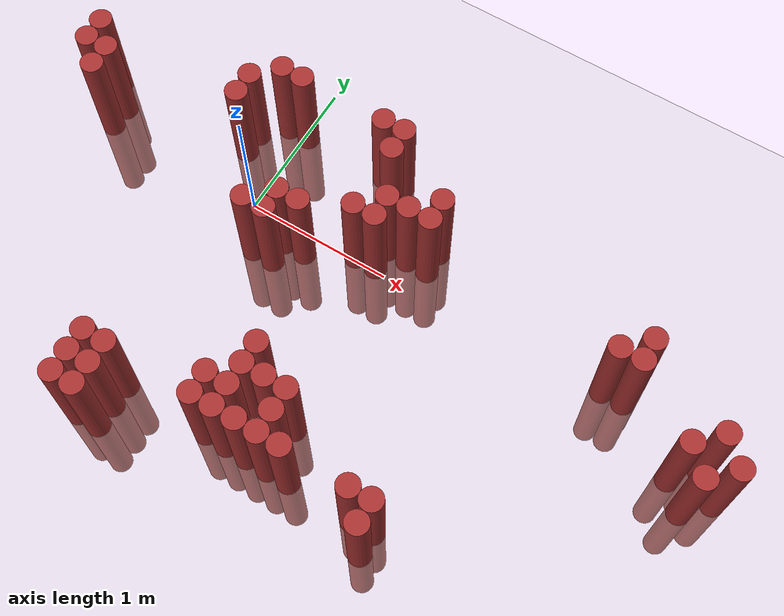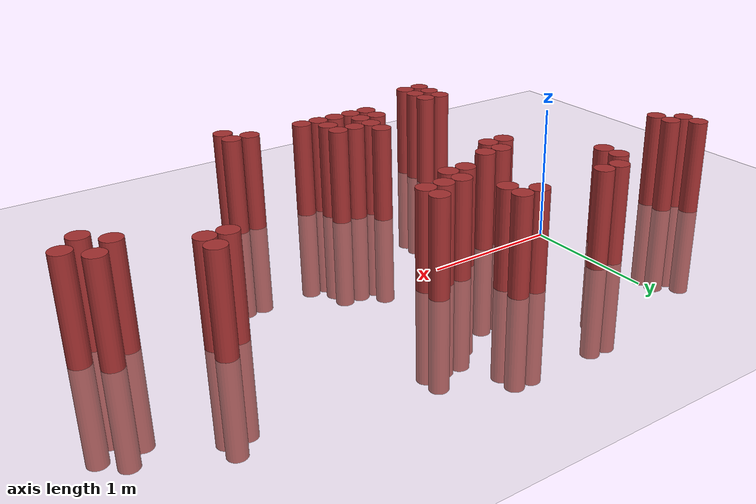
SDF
<sdf version="1.6">
 <world name="default">
  <model name="ground_plane">
   <static>1</static>
   <link name="link">
    <collision name="collision">
     <geometry><plane><normal>0 0 1</normal><size>100 100</size></plane></geometry>
     <surface><friction><ode><mu>100</mu><mu2>50</mu2></ode></friction></surface>
    </collision>
    <visual name="visual">
     <cast_shadows>0</cast_shadows>
     <geometry><plane><normal>0 0 1</normal><size>100 100</size></plane></geometry>
     <material>
      <script><uri>file://media/materials/scripts/gazebo.material</uri><name>Gazebo/Grey</name></script>
     </material>
    </visual>
   </link>
  </model>
  <model name="unit_cylinder_333">
   <static>1</static>
   <pose>-1.325000 0.175000 0.000000 0.000000 0.000000 0.000000</pose>
   <link name="link">
    <inertial>
     <mass>1</mass>
     <inertia><ixx>0.145833</ixx><ixy>0</ixy><ixz>0</ixz><iyy>0.145833</iyy><iyz>0</iyz><izz>0.125</izz></inertia>
    </inertial>
    <collision name="collision">
     <geometry><cylinder><radius>0.075000</radius><length>1.5</length></cylinder></geometry>
    </collision>
    <visual name="visual">
     <geometry><cylinder><radius>0.075000</radius><length>1.5</length></cylinder></geometry>
     <material>
      <ambient>0.648000 0.192000 0.192000 1</ambient>
      <diffuse>0.648000 0.192000 0.192000 1</diffuse>
     </material>
     <material>
      <script><name>Gazebo/Grey</name><uri>file://media/materials/scripts/gazebo.material</uri></script>
     </material>
    </visual>
   </link>
  </model>
  <model name="unit_cylinder_334">
   <static>1</static>
   <pose>-1.325000 0.325000 0.000000 0.000000 0.000000 0.000000</pose>
   <link name="link">
    <inertial>
     <mass>1</mass>
     <inertia><ixx>0.145833</ixx><ixy>0</ixy><ixz>0</ixz><iyy>0.145833</iyy><iyz>0</iyz><izz>0.125</izz></inertia>
    </inertial>
    <collision name="collision">
     <geometry><cylinder><radius>0.075000</radius><length>1.5</length></cylinder></geometry>
    </collision>
    <visual name="visual">
     <geometry><cylinder><radius>0.075000</radius><length>1.5</length></cylinder></geometry>
     <material>
      <ambient>0.648000 0.192000 0.192000 1</ambient>
      <diffuse>0.648000 0.192000 0.192000 1</diffuse>
     </material>
     <material>
      <script><name>Gazebo/Grey</name><uri>file://media/materials/scripts/gazebo.material</uri></script>
     </material>
    </visual>
   </link>
  </model>
  <model name="unit_cylinder_335">
   <static>1</static>
   <pose>-1.175000 0.025000 0.000000 0.000000 0.000000 0.000000</pose>
   <link name="link">
    <inertial>
     <mass>1</mass>
     <inertia><ixx>0.145833</ixx><ixy>0</ixy><ixz>0</ixz><iyy>0.145833</iyy><iyz>0</iyz><izz>0.125</izz></inertia>
    </inertial>
    <collision name="collision">
     <geometry><cylinder><radius>0.075000</radius><length>1.5</length></cylinder></geometry>
    </collision>
    <visual name="visual">
     <geometry><cylinder><radius>0.075000</radius><length>1.5</length></cylinder></geometry>
     <material>
      <ambient>0.648000 0.192000 0.192000 1</ambient>
      <diffuse>0.648000 0.192000 0.192000 1</diffuse>
     </material>
     <material>
      <script><name>Gazebo/Grey</name><uri>file://media/materials/scripts/gazebo.material</uri></script>
     </material>
    </visual>
   </link>
  </model>
  <model name="unit_cylinder_336">
   <static>1</static>
   <pose>-1.175000 0.175000 0.000000 0.000000 0.000000 0.000000</pose>
   <link name="link">
    <inertial>
     <mass>1</mass>
     <inertia><ixx>0.145833</ixx><ixy>0</ixy><ixz>0</ixz><iyy>0.145833</iyy><iyz>0</iyz><izz>0.125</izz></inertia>
    </inertial>
    <collision name="collision">
     <geometry><cylinder><radius>0.075000</radius><length>1.5</length></cylinder></geometry>
    </collision>
    <visual name="visual">
     <geometry><cylinder><radius>0.075000</radius><length>1.5</length></cylinder></geometry>
     <material>
      <ambient>0.648000 0.192000 0.192000 1</ambient>
      <diffuse>0.648000 0.192000 0.192000 1</diffuse>
     </material>
     <material>
      <script><name>Gazebo/Grey</name><uri>file://media/materials/scripts/gazebo.material</uri></script>
     </material>
    </visual>
   </link>
  </model>
  <model name="unit_cylinder_340">
   <static>1</static>
   <pose>-0.275000 0.325000 0.000000 0.000000 0.000000 0.000000</pose>
   <link name="link">
    <inertial>
     <mass>1</mass>
     <inertia><ixx>0.145833</ixx><ixy>0</ixy><ixz>0</ixz><iyy>0.145833</iyy><iyz>0</iyz><izz>0.125</izz></inertia>
    </inertial>
    <collision name="collision">
     <geometry><cylinder><radius>0.075000</radius><length>1.5</length></cylinder></geometry>
    </collision>
    <visual name="visual">
     <geometry><cylinder><radius>0.075000</radius><length>1.5</length></cylinder></geometry>
     <material>
      <ambient>0.648000 0.192000 0.192000 1</ambient>
      <diffuse>0.648000 0.192000 0.192000 1</diffuse>
     </material>
     <material>
      <script><name>Gazebo/Grey</name><uri>file://media/materials/scripts/gazebo.material</uri></script>
     </material>
    </visual>
   </link>
  </model>
  <model name="unit_cylinder_341">
   <static>1</static>
   <pose>-0.275000 0.475000 0.000000 0.000000 0.000000 0.000000</pose>
   <link name="link">
    <inertial>
     <mass>1</mass>
     <inertia><ixx>0.145833</ixx><ixy>0</ixy><ixz>0</ixz><iyy>0.145833</iyy><iyz>0</iyz><izz>0.125</izz></inertia>
    </inertial>
    <collision name="collision">
     <geometry><cylinder><radius>0.075000</radius><length>1.5</length></cylinder></geometry>
    </collision>
    <visual name="visual">
     <geometry><cylinder><radius>0.075000</radius><length>1.5</length></cylinder></geometry>
     <material>
      <ambient>0.648000 0.192000 0.192000 1</ambient>
      <diffuse>0.648000 0.192000 0.192000 1</diffuse>
     </material>
     <material>
      <script><name>Gazebo/Grey</name><uri>file://media/materials/scripts/gazebo.material</uri></script>
     </material>
    </visual>
   </link>
  </model>
  <model name="unit_cylinder_345">
   <static>1</static>
   <pose>-0.125000 -1.775000 0.000000 0.000000 0.000000 0.000000</pose>
   <link name="link">
    <inertial>
     <mass>1</mass>
     <inertia><ixx>0.145833</ixx><ixy>0</ixy><ixz>0</ixz><iyy>0.145833</iyy><iyz>0</iyz><izz>0.125</izz></inertia>
    </inertial>
    <collision name="collision">
     <geometry><cylinder><radius>0.075000</radius><length>1.5</length></cylinder></geometry>
    </collision>
    <visual name="visual">
     <geometry><cylinder><radius>0.075000</radius><length>1.5</length></cylinder></geometry>
     <material>
      <ambient>0.648000 0.192000 0.192000 1</ambient>
      <diffuse>0.648000 0.192000 0.192000 1</diffuse>
     </material>
     <material>
      <script><name>Gazebo/Grey</name><uri>file://media/materials/scripts/gazebo.material</uri></script>
     </material>
    </visual>
   </link>
  </model>
  <model name="unit_cylinder_346">
   <static>1</static>
   <pose>-0.125000 -1.625000 0.000000 0.000000 0.000000 0.000000</pose>
   <link name="link">
    <inertial>
     <mass>1</mass>
     <inertia><ixx>0.145833</ixx><ixy>0</ixy><ixz>0</ixz><iyy>0.145833</iyy><iyz>0</iyz><izz>0.125</izz></inertia>
    </inertial>
    <collision name="collision">
     <geometry><cylinder><radius>0.075000</radius><length>1.5</length></cylinder></geometry>
    </collision>
    <visual name="visual">
     <geometry><cylinder><radius>0.075000</radius><length>1.5</length></cylinder></geometry>
     <material>
      <ambient>0.648000 0.192000 0.192000 1</ambient>
      <diffuse>0.648000 0.192000 0.192000 1</diffuse>
     </material>
     <material>
      <script><name>Gazebo/Grey</name><uri>file://media/materials/scripts/gazebo.material</uri></script>
     </material>
    </visual>
   </link>
  </model>
  <model name="unit_cylinder_347">
   <static>1</static>
   <pose>-0.125000 -1.475000 0.000000 0.000000 0.000000 0.000000</pose>
   <link name="link">
    <inertial>
     <mass>1</mass>
     <inertia><ixx>0.145833</ixx><ixy>0</ixy><ixz>0</ixz><iyy>0.145833</iyy><iyz>0</iyz><izz>0.125</izz></inertia>
    </inertial>
    <collision name="collision">
     <geometry><cylinder><radius>0.075000</radius><length>1.5</length></cylinder></geometry>
    </collision>
    <visual name="visual">
     <geometry><cylinder><radius>0.075000</radius><length>1.5</length></cylinder></geometry>
     <material>
      <ambient>0.648000 0.192000 0.192000 1</ambient>
      <diffuse>0.648000 0.192000 0.192000 1</diffuse>
     </material>
     <material>
      <script><name>Gazebo/Grey</name><uri>file://media/materials/scripts/gazebo.material</uri></script>
     </material>
    </visual>
   </link>
  </model>
  <model name="unit_cylinder_348">
   <static>1</static>
   <pose>-0.125000 0.625000 0.000000 0.000000 0.000000 0.000000</pose>
   <link name="link">
    <inertial>
     <mass>1</mass>
     <inertia><ixx>0.145833</ixx><ixy>0</ixy><ixz>0</ixz><iyy>0.145833</iyy><iyz>0</iyz><izz>0.125</izz></inertia>
    </inertial>
    <collision name="collision">
     <geometry><cylinder><radius>0.075000</radius><length>1.5</length></cylinder></geometry>
    </collision>
    <visual name="visual">
     <geometry><cylinder><radius>0.075000</radius><length>1.5</length></cylinder></geometry>
     <material>
      <ambient>0.648000 0.192000 0.192000 1</ambient>
      <diffuse>0.648000 0.192000 0.192000 1</diffuse>
     </material>
     <material>
      <script><name>Gazebo/Grey</name><uri>file://media/materials/scripts/gazebo.material</uri></script>
     </material>
    </visual>
   </link>
  </model>
  <model name="unit_cylinder_354">
   <static>1</static>
   <pose>0.025000 -1.775000 0.000000 0.000000 0.000000 0.000000</pose>
   <link name="link">
    <inertial>
     <mass>1</mass>
     <inertia><ixx>0.145833</ixx><ixy>0</ixy><ixz>0</ixz><iyy>0.145833</iyy><iyz>0</iyz><izz>0.125</izz></inertia>
    </inertial>
    <collision name="collision">
     <geometry><cylinder><radius>0.075000</radius><length>1.5</length></cylinder></geometry>
    </collision>
    <visual name="visual">
     <geometry><cylinder><radius>0.075000</radius><length>1.5</length></cylinder></geometry>
     <material>
      <ambient>0.648000 0.192000 0.192000 1</ambient>
      <diffuse>0.648000 0.192000 0.192000 1</diffuse>
     </material>
     <material>
      <script><name>Gazebo/Grey</name><uri>file://media/materials/scripts/gazebo.material</uri></script>
     </material>
    </visual>
   </link>
  </model>
  <model name="unit_cylinder_355">
   <static>1</static>
   <pose>0.025000 -1.625000 0.000000 0.000000 0.000000 0.000000</pose>
   <link name="link">
    <inertial>
     <mass>1</mass>
     <inertia><ixx>0.145833</ixx><ixy>0</ixy><ixz>0</ixz><iyy>0.145833</iyy><iyz>0</iyz><izz>0.125</izz></inertia>
    </inertial>
    <collision name="collision">
     <geometry><cylinder><radius>0.075000</radius><length>1.5</length></cylinder></geometry>
    </collision>
    <visual name="visual">
     <geometry><cylinder><radius>0.075000</radius><length>1.5</length></cylinder></geometry>
     <material>
      <ambient>0.648000 0.192000 0.192000 1</ambient>
      <diffuse>0.648000 0.192000 0.192000 1</diffuse>
     </material>
     <material>
      <script><name>Gazebo/Grey</name><uri>file://media/materials/scripts/gazebo.material</uri></script>
     </material>
    </visual>
   </link>
  </model>
  <model name="unit_cylinder_356">
   <static>1</static>
   <pose>0.025000 -1.475000 0.000000 0.000000 0.000000 0.000000</pose>
   <link name="link">
    <inertial>
     <mass>1</mass>
     <inertia><ixx>0.145833</ixx><ixy>0</ixy><ixz>0</ixz><iyy>0.145833</iyy><iyz>0</iyz><izz>0.125</izz></inertia>
    </inertial>
    <collision name="collision">
     <geometry><cylinder><radius>0.075000</radius><length>1.5</length></cylinder></geometry>
    </collision>
    <visual name="visual">
     <geometry><cylinder><radius>0.075000</radius><length>1.5</length></cylinder></geometry>
     <material>
      <ambient>0.648000 0.192000 0.192000 1</ambient>
      <diffuse>0.648000 0.192000 0.192000 1</diffuse>
     </material>
     <material>
      <script><name>Gazebo/Grey</name><uri>file://media/materials/scripts/gazebo.material</uri></script>
     </material>
    </visual>
   </link>
  </model>
  <model name="unit_cylinder_357">
   <static>1</static>
   <pose>0.025000 0.625000 0.000000 0.000000 0.000000 0.000000</pose>
   <link name="link">
    <inertial>
     <mass>1</mass>
     <inertia><ixx>0.145833</ixx><ixy>0</ixy><ixz>0</ixz><iyy>0.145833</iyy><iyz>0</iyz><izz>0.125</izz></inertia>
    </inertial>
    <collision name="collision">
     <geometry><cylinder><radius>0.075000</radius><length>1.5</length></cylinder></geometry>
    </collision>
    <visual name="visual">
     <geometry><cylinder><radius>0.075000</radius><length>1.5</length></cylinder></geometry>
     <material>
      <ambient>0.648000 0.192000 0.192000 1</ambient>
      <diffuse>0.648000 0.192000 0.192000 1</diffuse>
     </material>
     <material>
      <script><name>Gazebo/Grey</name><uri>file://media/materials/scripts/gazebo.material</uri></script>
     </material>
    </visual>
   </link>
  </model>
  <model name="unit_cylinder_359">
   <static>1</static>
   <pose>0.175000 -0.275000 0.000000 0.000000 0.000000 0.000000</pose>
   <link name="link">
    <inertial>
     <mass>1</mass>
     <inertia><ixx>0.145833</ixx><ixy>0</ixy><ixz>0</ixz><iyy>0.145833</iyy><iyz>0</iyz><izz>0.125</izz></inertia>
    </inertial>
    <collision name="collision">
     <geometry><cylinder><radius>0.075000</radius><length>1.5</length></cylinder></geometry>
    </collision>
    <visual name="visual">
     <geometry><cylinder><radius>0.075000</radius><length>1.5</length></cylinder></geometry>
     <material>
      <ambient>0.648000 0.192000 0.192000 1</ambient>
      <diffuse>0.648000 0.192000 0.192000 1</diffuse>
     </material>
     <material>
      <script><name>Gazebo/Grey</name><uri>file://media/materials/scripts/gazebo.material</uri></script>
     </material>
    </visual>
   </link>
  </model>
  <model name="unit_cylinder_360">
   <static>1</static>
   <pose>0.325000 -0.275000 0.000000 0.000000 0.000000 0.000000</pose>
   <link name="link">
    <inertial>
     <mass>1</mass>
     <inertia><ixx>0.145833</ixx><ixy>0</ixy><ixz>0</ixz><iyy>0.145833</iyy><iyz>0</iyz><izz>0.125</izz></inertia>
    </inertial>
    <collision name="collision">
     <geometry><cylinder><radius>0.075000</radius><length>1.5</length></cylinder></geometry>
    </collision>
    <visual name="visual">
     <geometry><cylinder><radius>0.075000</radius><length>1.5</length></cylinder></geometry>
     <material>
      <ambient>0.648000 0.192000 0.192000 1</ambient>
      <diffuse>0.648000 0.192000 0.192000 1</diffuse>
     </material>
     <material>
      <script><name>Gazebo/Grey</name><uri>file://media/materials/scripts/gazebo.material</uri></script>
     </material>
    </visual>
   </link>
  </model>
  <model name="unit_cylinder_361">
   <static>1</static>
   <pose>0.325000 -0.125000 0.000000 0.000000 0.000000 0.000000</pose>
   <link name="link">
    <inertial>
     <mass>1</mass>
     <inertia><ixx>0.145833</ixx><ixy>0</ixy><ixz>0</ixz><iyy>0.145833</iyy><iyz>0</iyz><izz>0.125</izz></inertia>
    </inertial>
    <collision name="collision">
     <geometry><cylinder><radius>0.075000</radius><length>1.5</length></cylinder></geometry>
    </collision>
    <visual name="visual">
     <geometry><cylinder><radius>0.075000</radius><length>1.5</length></cylinder></geometry>
     <material>
      <ambient>0.648000 0.192000 0.192000 1</ambient>
      <diffuse>0.648000 0.192000 0.192000 1</diffuse>
     </material>
     <material>
      <script><name>Gazebo/Grey</name><uri>file://media/materials/scripts/gazebo.material</uri></script>
     </material>
    </visual>
   </link>
  </model>
  <model name="unit_cylinder_363">
   <static>1</static>
   <pose>0.475000 -0.125000 0.000000 0.000000 0.000000 0.000000</pose>
   <link name="link">
    <inertial>
     <mass>1</mass>
     <inertia><ixx>0.145833</ixx><ixy>0</ixy><ixz>0</ixz><iyy>0.145833</iyy><iyz>0</iyz><izz>0.125</izz></inertia>
    </inertial>
    <collision name="collision">
     <geometry><cylinder><radius>0.075000</radius><length>1.5</length></cylinder></geometry>
    </collision>
    <visual name="visual">
     <geometry><cylinder><radius>0.075000</radius><length>1.5</length></cylinder></geometry>
     <material>
      <ambient>0.648000 0.192000 0.192000 1</ambient>
      <diffuse>0.648000 0.192000 0.192000 1</diffuse>
     </material>
     <material>
      <script><name>Gazebo/Grey</name><uri>file://media/materials/scripts/gazebo.material</uri></script>
     </material>
    </visual>
   </link>
  </model>
  <model name="unit_cylinder_368">
   <static>1</static>
   <pose>0.625000 -1.475000 0.000000 0.000000 0.000000 0.000000</pose>
   <link name="link">
    <inertial>
     <mass>1</mass>
     <inertia><ixx>0.145833</ixx><ixy>0</ixy><ixz>0</ixz><iyy>0.145833</iyy><iyz>0</iyz><izz>0.125</izz></inertia>
    </inertial>
    <collision name="collision">
     <geometry><cylinder><radius>0.075000</radius><length>1.5</length></cylinder></geometry>
    </collision>
    <visual name="visual">
     <geometry><cylinder><radius>0.075000</radius><length>1.5</length></cylinder></geometry>
     <material>
      <ambient>0.648000 0.192000 0.192000 1</ambient>
      <diffuse>0.648000 0.192000 0.192000 1</diffuse>
     </material>
     <material>
      <script><name>Gazebo/Grey</name><uri>file://media/materials/scripts/gazebo.material</uri></script>
     </material>
    </visual>
   </link>
  </model>
  <model name="unit_cylinder_369">
   <static>1</static>
   <pose>0.625000 -1.325000 0.000000 0.000000 0.000000 0.000000</pose>
   <link name="link">
    <inertial>
     <mass>1</mass>
     <inertia><ixx>0.145833</ixx><ixy>0</ixy><ixz>0</ixz><iyy>0.145833</iyy><iyz>0</iyz><izz>0.125</izz></inertia>
    </inertial>
    <collision name="collision">
     <geometry><cylinder><radius>0.075000</radius><length>1.5</length></cylinder></geometry>
    </collision>
    <visual name="visual">
     <geometry><cylinder><radius>0.075000</radius><length>1.5</length></cylinder></geometry>
     <material>
      <ambient>0.648000 0.192000 0.192000 1</ambient>
      <diffuse>0.648000 0.192000 0.192000 1</diffuse>
     </material>
     <material>
      <script><name>Gazebo/Grey</name><uri>file://media/materials/scripts/gazebo.material</uri></script>
     </material>
    </visual>
   </link>
  </model>
  <model name="unit_cylinder_370">
   <static>1</static>
   <pose>0.625000 0.625000 0.000000 0.000000 0.000000 0.000000</pose>
   <link name="link">
    <inertial>
     <mass>1</mass>
     <inertia><ixx>0.145833</ixx><ixy>0</ixy><ixz>0</ixz><iyy>0.145833</iyy><iyz>0</iyz><izz>0.125</izz></inertia>
    </inertial>
    <collision name="collision">
     <geometry><cylinder><radius>0.075000</radius><length>1.5</length></cylinder></geometry>
    </collision>
    <visual name="visual">
     <geometry><cylinder><radius>0.075000</radius><length>1.5</length></cylinder></geometry>
     <material>
      <ambient>0.648000 0.192000 0.192000 1</ambient>
      <diffuse>0.648000 0.192000 0.192000 1</diffuse>
     </material>
     <material>
      <script><name>Gazebo/Grey</name><uri>file://media/materials/scripts/gazebo.material</uri></script>
     </material>
    </visual>
   </link>
  </model>
  <model name="unit_cylinder_377">
   <static>1</static>
   <pose>0.775000 -1.475000 0.000000 0.000000 0.000000 0.000000</pose>
   <link name="link">
    <inertial>
     <mass>1</mass>
     <inertia><ixx>0.145833</ixx><ixy>0</ixy><ixz>0</ixz><iyy>0.145833</iyy><iyz>0</iyz><izz>0.125</izz></inertia>
    </inertial>
    <collision name="collision">
     <geometry><cylinder><radius>0.075000</radius><length>1.5</length></cylinder></geometry>
    </collision>
    <visual name="visual">
     <geometry><cylinder><radius>0.075000</radius><length>1.5</length></cylinder></geometry>
     <material>
      <ambient>0.648000 0.192000 0.192000 1</ambient>
      <diffuse>0.648000 0.192000 0.192000 1</diffuse>
     </material>
     <material>
      <script><name>Gazebo/Grey</name><uri>file://media/materials/scripts/gazebo.material</uri></script>
     </material>
    </visual>
   </link>
  </model>
  <model name="unit_cylinder_378">
   <static>1</static>
   <pose>0.775000 -1.325000 0.000000 0.000000 0.000000 0.000000</pose>
   <link name="link">
    <inertial>
     <mass>1</mass>
     <inertia><ixx>0.145833</ixx><ixy>0</ixy><ixz>0</ixz><iyy>0.145833</iyy><iyz>0</iyz><izz>0.125</izz></inertia>
    </inertial>
    <collision name="collision">
     <geometry><cylinder><radius>0.075000</radius><length>1.5</length></cylinder></geometry>
    </collision>
    <visual name="visual">
     <geometry><cylinder><radius>0.075000</radius><length>1.5</length></cylinder></geometry>
     <material>
      <ambient>0.648000 0.192000 0.192000 1</ambient>
      <diffuse>0.648000 0.192000 0.192000 1</diffuse>
     </material>
     <material>
      <script><name>Gazebo/Grey</name><uri>file://media/materials/scripts/gazebo.material</uri></script>
     </material>
    </visual>
   </link>
  </model>
  <model name="unit_cylinder_379">
   <static>1</static>
   <pose>0.775000 -1.175000 0.000000 0.000000 0.000000 0.000000</pose>
   <link name="link">
    <inertial>
     <mass>1</mass>
     <inertia><ixx>0.145833</ixx><ixy>0</ixy><ixz>0</ixz><iyy>0.145833</iyy><iyz>0</iyz><izz>0.125</izz></inertia>
    </inertial>
    <collision name="collision">
     <geometry><cylinder><radius>0.075000</radius><length>1.5</length></cylinder></geometry>
    </collision>
    <visual name="visual">
     <geometry><cylinder><radius>0.075000</radius><length>1.5</length></cylinder></geometry>
     <material>
      <ambient>0.648000 0.192000 0.192000 1</ambient>
      <diffuse>0.648000 0.192000 0.192000 1</diffuse>
     </material>
     <material>
      <script><name>Gazebo/Grey</name><uri>file://media/materials/scripts/gazebo.material</uri></script>
     </material>
    </visual>
   </link>
  </model>
  <model name="unit_cylinder_380">
   <static>1</static>
   <pose>0.775000 -1.025000 0.000000 0.000000 0.000000 0.000000</pose>
   <link name="link">
    <inertial>
     <mass>1</mass>
     <inertia><ixx>0.145833</ixx><ixy>0</ixy><ixz>0</ixz><iyy>0.145833</iyy><iyz>0</iyz><izz>0.125</izz></inertia>
    </inertial>
    <collision name="collision">
     <geometry><cylinder><radius>0.075000</radius><length>1.5</length></cylinder></geometry>
    </collision>
    <visual name="visual">
     <geometry><cylinder><radius>0.075000</radius><length>1.5</length></cylinder></geometry>
     <material>
      <ambient>0.648000 0.192000 0.192000 1</ambient>
      <diffuse>0.648000 0.192000 0.192000 1</diffuse>
     </material>
     <material>
      <script><name>Gazebo/Grey</name><uri>file://media/materials/scripts/gazebo.material</uri></script>
     </material>
    </visual>
   </link>
  </model>
  <model name="unit_cylinder_381">
   <static>1</static>
   <pose>0.775000 0.025000 0.000000 0.000000 0.000000 0.000000</pose>
   <link name="link">
    <inertial>
     <mass>1</mass>
     <inertia><ixx>0.145833</ixx><ixy>0</ixy><ixz>0</ixz><iyy>0.145833</iyy><iyz>0</iyz><izz>0.125</izz></inertia>
    </inertial>
    <collision name="collision">
     <geometry><cylinder><radius>0.075000</radius><length>1.5</length></cylinder></geometry>
    </collision>
    <visual name="visual">
     <geometry><cylinder><radius>0.075000</radius><length>1.5</length></cylinder></geometry>
     <material>
      <ambient>0.648000 0.192000 0.192000 1</ambient>
      <diffuse>0.648000 0.192000 0.192000 1</diffuse>
     </material>
     <material>
      <script><name>Gazebo/Grey</name><uri>file://media/materials/scripts/gazebo.material</uri></script>
     </material>
    </visual>
   </link>
  </model>
  <model name="unit_cylinder_382">
   <static>1</static>
   <pose>0.775000 0.475000 0.000000 0.000000 0.000000 0.000000</pose>
   <link name="link">
    <inertial>
     <mass>1</mass>
     <inertia><ixx>0.145833</ixx><ixy>0</ixy><ixz>0</ixz><iyy>0.145833</iyy><iyz>0</iyz><izz>0.125</izz></inertia>
    </inertial>
    <collision name="collision">
     <geometry><cylinder><radius>0.075000</radius><length>1.5</length></cylinder></geometry>
    </collision>
    <visual name="visual">
     <geometry><cylinder><radius>0.075000</radius><length>1.5</length></cylinder></geometry>
     <material>
      <ambient>0.648000 0.192000 0.192000 1</ambient>
      <diffuse>0.648000 0.192000 0.192000 1</diffuse>
     </material>
     <material>
      <script><name>Gazebo/Grey</name><uri>file://media/materials/scripts/gazebo.material</uri></script>
     </material>
    </visual>
   </link>
  </model>
  <model name="unit_cylinder_383">
   <static>1</static>
   <pose>0.775000 0.625000 0.000000 0.000000 0.000000 0.000000</pose>
   <link name="link">
    <inertial>
     <mass>1</mass>
     <inertia><ixx>0.145833</ixx><ixy>0</ixy><ixz>0</ixz><iyy>0.145833</iyy><iyz>0</iyz><izz>0.125</izz></inertia>
    </inertial>
    <collision name="collision">
     <geometry><cylinder><radius>0.075000</radius><length>1.5</length></cylinder></geometry>
    </collision>
    <visual name="visual">
     <geometry><cylinder><radius>0.075000</radius><length>1.5</length></cylinder></geometry>
     <material>
      <ambient>0.648000 0.192000 0.192000 1</ambient>
      <diffuse>0.648000 0.192000 0.192000 1</diffuse>
     </material>
     <material>
      <script><name>Gazebo/Grey</name><uri>file://media/materials/scripts/gazebo.material</uri></script>
     </material>
    </visual>
   </link>
  </model>
  <model name="unit_cylinder_388">
   <static>1</static>
   <pose>0.925000 -1.475000 0.000000 0.000000 0.000000 0.000000</pose>
   <link name="link">
    <inertial>
     <mass>1</mass>
     <inertia><ixx>0.145833</ixx><ixy>0</ixy><ixz>0</ixz><iyy>0.145833</iyy><iyz>0</iyz><izz>0.125</izz></inertia>
    </inertial>
    <collision name="collision">
     <geometry><cylinder><radius>0.075000</radius><length>1.5</length></cylinder></geometry>
    </collision>
    <visual name="visual">
     <geometry><cylinder><radius>0.075000</radius><length>1.5</length></cylinder></geometry>
     <material>
      <ambient>0.648000 0.192000 0.192000 1</ambient>
      <diffuse>0.648000 0.192000 0.192000 1</diffuse>
     </material>
     <material>
      <script><name>Gazebo/Grey</name><uri>file://media/materials/scripts/gazebo.material</uri></script>
     </material>
    </visual>
   </link>
  </model>
  <model name="unit_cylinder_389">
   <static>1</static>
   <pose>0.925000 -1.175000 0.000000 0.000000 0.000000 0.000000</pose>
   <link name="link">
    <inertial>
     <mass>1</mass>
     <inertia><ixx>0.145833</ixx><ixy>0</ixy><ixz>0</ixz><iyy>0.145833</iyy><iyz>0</iyz><izz>0.125</izz></inertia>
    </inertial>
    <collision name="collision">
     <geometry><cylinder><radius>0.075000</radius><length>1.5</length></cylinder></geometry>
    </collision>
    <visual name="visual">
     <geometry><cylinder><radius>0.075000</radius><length>1.5</length></cylinder></geometry>
     <material>
      <ambient>0.648000 0.192000 0.192000 1</ambient>
      <diffuse>0.648000 0.192000 0.192000 1</diffuse>
     </material>
     <material>
      <script><name>Gazebo/Grey</name><uri>file://media/materials/scripts/gazebo.material</uri></script>
     </material>
    </visual>
   </link>
  </model>
  <model name="unit_cylinder_390">
   <static>1</static>
   <pose>0.925000 0.025000 0.000000 0.000000 0.000000 0.000000</pose>
   <link name="link">
    <inertial>
     <mass>1</mass>
     <inertia><ixx>0.145833</ixx><ixy>0</ixy><ixz>0</ixz><iyy>0.145833</iyy><iyz>0</iyz><izz>0.125</izz></inertia>
    </inertial>
    <collision name="collision">
     <geometry><cylinder><radius>0.075000</radius><length>1.5</length></cylinder></geometry>
    </collision>
    <visual name="visual">
     <geometry><cylinder><radius>0.075000</radius><length>1.5</length></cylinder></geometry>
     <material>
      <ambient>0.648000 0.192000 0.192000 1</ambient>
      <diffuse>0.648000 0.192000 0.192000 1</diffuse>
     </material>
     <material>
      <script><name>Gazebo/Grey</name><uri>file://media/materials/scripts/gazebo.material</uri></script>
     </material>
    </visual>
   </link>
  </model>
  <model name="unit_cylinder_391">
   <static>1</static>
   <pose>0.925000 0.175000 0.000000 0.000000 0.000000 0.000000</pose>
   <link name="link">
    <inertial>
     <mass>1</mass>
     <inertia><ixx>0.145833</ixx><ixy>0</ixy><ixz>0</ixz><iyy>0.145833</iyy><iyz>0</iyz><izz>0.125</izz></inertia>
    </inertial>
    <collision name="collision">
     <geometry><cylinder><radius>0.075000</radius><length>1.5</length></cylinder></geometry>
    </collision>
    <visual name="visual">
     <geometry><cylinder><radius>0.075000</radius><length>1.5</length></cylinder></geometry>
     <material>
      <ambient>0.648000 0.192000 0.192000 1</ambient>
      <diffuse>0.648000 0.192000 0.192000 1</diffuse>
     </material>
     <material>
      <script><name>Gazebo/Grey</name><uri>file://media/materials/scripts/gazebo.material</uri></script>
     </material>
    </visual>
   </link>
  </model>
  <model name="unit_cylinder_393">
   <static>1</static>
   <pose>1.075000 -1.475000 0.000000 0.000000 0.000000 0.000000</pose>
   <link name="link">
    <inertial>
     <mass>1</mass>
     <inertia><ixx>0.145833</ixx><ixy>0</ixy><ixz>0</ixz><iyy>0.145833</iyy><iyz>0</iyz><izz>0.125</izz></inertia>
    </inertial>
    <collision name="collision">
     <geometry><cylinder><radius>0.075000</radius><length>1.5</length></cylinder></geometry>
    </collision>
    <visual name="visual">
     <geometry><cylinder><radius>0.075000</radius><length>1.5</length></cylinder></geometry>
     <material>
      <ambient>0.648000 0.192000 0.192000 1</ambient>
      <diffuse>0.648000 0.192000 0.192000 1</diffuse>
     </material>
     <material>
      <script><name>Gazebo/Grey</name><uri>file://media/materials/scripts/gazebo.material</uri></script>
     </material>
    </visual>
   </link>
  </model>
  <model name="unit_cylinder_394">
   <static>1</static>
   <pose>1.075000 -1.325000 0.000000 0.000000 0.000000 0.000000</pose>
   <link name="link">
    <inertial>
     <mass>1</mass>
     <inertia><ixx>0.145833</ixx><ixy>0</ixy><ixz>0</ixz><iyy>0.145833</iyy><iyz>0</iyz><izz>0.125</izz></inertia>
    </inertial>
    <collision name="collision">
     <geometry><cylinder><radius>0.075000</radius><length>1.5</length></cylinder></geometry>
    </collision>
    <visual name="visual">
     <geometry><cylinder><radius>0.075000</radius><length>1.5</length></cylinder></geometry>
     <material>
      <ambient>0.648000 0.192000 0.192000 1</ambient>
      <diffuse>0.648000 0.192000 0.192000 1</diffuse>
     </material>
     <material>
      <script><name>Gazebo/Grey</name><uri>file://media/materials/scripts/gazebo.material</uri></script>
     </material>
    </visual>
   </link>
  </model>
  <model name="unit_cylinder_395">
   <static>1</static>
   <pose>1.075000 -1.175000 0.000000 0.000000 0.000000 0.000000</pose>
   <link name="link">
    <inertial>
     <mass>1</mass>
     <inertia><ixx>0.145833</ixx><ixy>0</ixy><ixz>0</ixz><iyy>0.145833</iyy><iyz>0</iyz><izz>0.125</izz></inertia>
    </inertial>
    <collision name="collision">
     <geometry><cylinder><radius>0.075000</radius><length>1.5</length></cylinder></geometry>
    </collision>
    <visual name="visual">
     <geometry><cylinder><radius>0.075000</radius><length>1.5</length></cylinder></geometry>
     <material>
      <ambient>0.648000 0.192000 0.192000 1</ambient>
      <diffuse>0.648000 0.192000 0.192000 1</diffuse>
     </material>
     <material>
      <script><name>Gazebo/Grey</name><uri>file://media/materials/scripts/gazebo.material</uri></script>
     </material>
    </visual>
   </link>
  </model>
  <model name="unit_cylinder_396">
   <static>1</static>
   <pose>1.075000 0.175000 0.000000 0.000000 0.000000 0.000000</pose>
   <link name="link">
    <inertial>
     <mass>1</mass>
     <inertia><ixx>0.145833</ixx><ixy>0</ixy><ixz>0</ixz><iyy>0.145833</iyy><iyz>0</iyz><izz>0.125</izz></inertia>
    </inertial>
    <collision name="collision">
     <geometry><cylinder><radius>0.075000</radius><length>1.5</length></cylinder></geometry>
    </collision>
    <visual name="visual">
     <geometry><cylinder><radius>0.075000</radius><length>1.5</length></cylinder></geometry>
     <material>
      <ambient>0.648000 0.192000 0.192000 1</ambient>
      <diffuse>0.648000 0.192000 0.192000 1</diffuse>
     </material>
     <material>
      <script><name>Gazebo/Grey</name><uri>file://media/materials/scripts/gazebo.material</uri></script>
     </material>
    </visual>
   </link>
  </model>
  <model name="unit_cylinder_401">
   <static>1</static>
   <pose>1.225000 -1.475000 0.000000 0.000000 0.000000 0.000000</pose>
   <link name="link">
    <inertial>
     <mass>1</mass>
     <inertia><ixx>0.145833</ixx><ixy>0</ixy><ixz>0</ixz><iyy>0.145833</iyy><iyz>0</iyz><izz>0.125</izz></inertia>
    </inertial>
    <collision name="collision">
     <geometry><cylinder><radius>0.075000</radius><length>1.5</length></cylinder></geometry>
    </collision>
    <visual name="visual">
     <geometry><cylinder><radius>0.075000</radius><length>1.5</length></cylinder></geometry>
     <material>
      <ambient>0.648000 0.192000 0.192000 1</ambient>
      <diffuse>0.648000 0.192000 0.192000 1</diffuse>
     </material>
     <material>
      <script><name>Gazebo/Grey</name><uri>file://media/materials/scripts/gazebo.material</uri></script>
     </material>
    </visual>
   </link>
  </model>
  <model name="unit_cylinder_402">
   <static>1</static>
   <pose>1.225000 0.175000 0.000000 0.000000 0.000000 0.000000</pose>
   <link name="link">
    <inertial>
     <mass>1</mass>
     <inertia><ixx>0.145833</ixx><ixy>0</ixy><ixz>0</ixz><iyy>0.145833</iyy><iyz>0</iyz><izz>0.125</izz></inertia>
    </inertial>
    <collision name="collision">
     <geometry><cylinder><radius>0.075000</radius><length>1.5</length></cylinder></geometry>
    </collision>
    <visual name="visual">
     <geometry><cylinder><radius>0.075000</radius><length>1.5</length></cylinder></geometry>
     <material>
      <ambient>0.648000 0.192000 0.192000 1</ambient>
      <diffuse>0.648000 0.192000 0.192000 1</diffuse>
     </material>
     <material>
      <script><name>Gazebo/Grey</name><uri>file://media/materials/scripts/gazebo.material</uri></script>
     </material>
    </visual>
   </link>
  </model>
  <model name="unit_cylinder_403">
   <static>1</static>
   <pose>1.225000 0.325000 0.000000 0.000000 0.000000 0.000000</pose>
   <link name="link">
    <inertial>
     <mass>1</mass>
     <inertia><ixx>0.145833</ixx><ixy>0</ixy><ixz>0</ixz><iyy>0.145833</iyy><iyz>0</iyz><izz>0.125</izz></inertia>
    </inertial>
    <collision name="collision">
     <geometry><cylinder><radius>0.075000</radius><length>1.5</length></cylinder></geometry>
    </collision>
    <visual name="visual">
     <geometry><cylinder><radius>0.075000</radius><length>1.5</length></cylinder></geometry>
     <material>
      <ambient>0.648000 0.192000 0.192000 1</ambient>
      <diffuse>0.648000 0.192000 0.192000 1</diffuse>
     </material>
     <material>
      <script><name>Gazebo/Grey</name><uri>file://media/materials/scripts/gazebo.material</uri></script>
     </material>
    </visual>
   </link>
  </model>
  <model name="unit_cylinder_412">
   <static>1</static>
   <pose>1.675000 -1.475000 0.000000 0.000000 0.000000 0.000000</pose>
   <link name="link">
    <inertial>
     <mass>1</mass>
     <inertia><ixx>0.145833</ixx><ixy>0</ixy><ixz>0</ixz><iyy>0.145833</iyy><iyz>0</iyz><izz>0.125</izz></inertia>
    </inertial>
    <collision name="collision">
     <geometry><cylinder><radius>0.075000</radius><length>1.5</length></cylinder></geometry>
    </collision>
    <visual name="visual">
     <geometry><cylinder><radius>0.075000</radius><length>1.5</length></cylinder></geometry>
     <material>
      <ambient>0.648000 0.192000 0.192000 1</ambient>
      <diffuse>0.648000 0.192000 0.192000 1</diffuse>
     </material>
     <material>
      <script><name>Gazebo/Grey</name><uri>file://media/materials/scripts/gazebo.material</uri></script>
     </material>
    </visual>
   </link>
  </model>
  <model name="unit_cylinder_414">
   <static>1</static>
   <pose>1.825000 -1.625000 0.000000 0.000000 0.000000 0.000000</pose>
   <link name="link">
    <inertial>
     <mass>1</mass>
     <inertia><ixx>0.145833</ixx><ixy>0</ixy><ixz>0</ixz><iyy>0.145833</iyy><iyz>0</iyz><izz>0.125</izz></inertia>
    </inertial>
    <collision name="collision">
     <geometry><cylinder><radius>0.075000</radius><length>1.5</length></cylinder></geometry>
    </collision>
    <visual name="visual">
     <geometry><cylinder><radius>0.075000</radius><length>1.5</length></cylinder></geometry>
     <material>
      <ambient>0.648000 0.192000 0.192000 1</ambient>
      <diffuse>0.648000 0.192000 0.192000 1</diffuse>
     </material>
     <material>
      <script><name>Gazebo/Grey</name><uri>file://media/materials/scripts/gazebo.material</uri></script>
     </material>
    </visual>
   </link>
  </model>
  <model name="unit_cylinder_415">
   <static>1</static>
   <pose>1.825000 -1.475000 0.000000 0.000000 0.000000 0.000000</pose>
   <link name="link">
    <inertial>
     <mass>1</mass>
     <inertia><ixx>0.145833</ixx><ixy>0</ixy><ixz>0</ixz><iyy>0.145833</iyy><iyz>0</iyz><izz>0.125</izz></inertia>
    </inertial>
    <collision name="collision">
     <geometry><cylinder><radius>0.075000</radius><length>1.5</length></cylinder></geometry>
    </collision>
    <visual name="visual">
     <geometry><cylinder><radius>0.075000</radius><length>1.5</length></cylinder></geometry>
     <material>
      <ambient>0.648000 0.192000 0.192000 1</ambient>
      <diffuse>0.648000 0.192000 0.192000 1</diffuse>
     </material>
     <material>
      <script><name>Gazebo/Grey</name><uri>file://media/materials/scripts/gazebo.material</uri></script>
     </material>
    </visual>
   </link>
  </model>
  <model name="unit_cylinder_420">
   <static>1</static>
   <pose>2.575000 0.025000 0.000000 0.000000 0.000000 0.000000</pose>
   <link name="link">
    <inertial>
     <mass>1</mass>
     <inertia><ixx>0.145833</ixx><ixy>0</ixy><ixz>0</ixz><iyy>0.145833</iyy><iyz>0</iyz><izz>0.125</izz></inertia>
    </inertial>
    <collision name="collision">
     <geometry><cylinder><radius>0.075000</radius><length>1.5</length></cylinder></geometry>
    </collision>
    <visual name="visual">
     <geometry><cylinder><radius>0.075000</radius><length>1.5</length></cylinder></geometry>
     <material>
      <ambient>0.648000 0.192000 0.192000 1</ambient>
      <diffuse>0.648000 0.192000 0.192000 1</diffuse>
     </material>
     <material>
      <script><name>Gazebo/Grey</name><uri>file://media/materials/scripts/gazebo.material</uri></script>
     </material>
    </visual>
   </link>
  </model>
  <model name="unit_cylinder_423">
   <static>1</static>
   <pose>2.725000 0.025000 0.000000 0.000000 0.000000 0.000000</pose>
   <link name="link">
    <inertial>
     <mass>1</mass>
     <inertia><ixx>0.145833</ixx><ixy>0</ixy><ixz>0</ixz><iyy>0.145833</iyy><iyz>0</iyz><izz>0.125</izz></inertia>
    </inertial>
    <collision name="collision">
     <geometry><cylinder><radius>0.075000</radius><length>1.5</length></cylinder></geometry>
    </collision>
    <visual name="visual">
     <geometry><cylinder><radius>0.075000</radius><length>1.5</length></cylinder></geometry>
     <material>
      <ambient>0.648000 0.192000 0.192000 1</ambient>
      <diffuse>0.648000 0.192000 0.192000 1</diffuse>
     </material>
     <material>
      <script><name>Gazebo/Grey</name><uri>file://media/materials/scripts/gazebo.material</uri></script>
     </material>
    </visual>
   </link>
  </model>
  <model name="unit_cylinder_424">
   <static>1</static>
   <pose>2.725000 0.175000 0.000000 0.000000 0.000000 0.000000</pose>
   <link name="link">
    <inertial>
     <mass>1</mass>
     <inertia><ixx>0.145833</ixx><ixy>0</ixy><ixz>0</ixz><iyy>0.145833</iyy><iyz>0</iyz><izz>0.125</izz></inertia>
    </inertial>
    <collision name="collision">
     <geometry><cylinder><radius>0.075000</radius><length>1.5</length></cylinder></geometry>
    </collision>
    <visual name="visual">
     <geometry><cylinder><radius>0.075000</radius><length>1.5</length></cylinder></geometry>
     <material>
      <ambient>0.648000 0.192000 0.192000 1</ambient>
      <diffuse>0.648000 0.192000 0.192000 1</diffuse>
     </material>
     <material>
      <script><name>Gazebo/Grey</name><uri>file://media/materials/scripts/gazebo.material</uri></script>
     </material>
    </visual>
   </link>
  </model>
  <model name="unit_cylinder_443">
   <static>1</static>
   <pose>3.175000 -0.275000 0.000000 0.000000 0.000000 0.000000</pose>
   <link name="link">
    <inertial>
     <mass>1</mass>
     <inertia><ixx>0.145833</ixx><ixy>0</ixy><ixz>0</ixz><iyy>0.145833</iyy><iyz>0</iyz><izz>0.125</izz></inertia>
    </inertial>
    <collision name="collision">
     <geometry><cylinder><radius>0.075000</radius><length>1.5</length></cylinder></geometry>
    </collision>
    <visual name="visual">
     <geometry><cylinder><radius>0.075000</radius><length>1.5</length></cylinder></geometry>
     <material>
      <ambient>0.648000 0.192000 0.192000 1</ambient>
      <diffuse>0.648000 0.192000 0.192000 1</diffuse>
     </material>
     <material>
      <script><name>Gazebo/Grey</name><uri>file://media/materials/scripts/gazebo.material</uri></script>
     </material>
    </visual>
   </link>
  </model>
  <model name="unit_cylinder_450">
   <static>1</static>
   <pose>3.325000 -0.425000 0.000000 0.000000 0.000000 0.000000</pose>
   <link name="link">
    <inertial>
     <mass>1</mass>
     <inertia><ixx>0.145833</ixx><ixy>0</ixy><ixz>0</ixz><iyy>0.145833</iyy><iyz>0</iyz><izz>0.125</izz></inertia>
    </inertial>
    <collision name="collision">
     <geometry><cylinder><radius>0.075000</radius><length>1.5</length></cylinder></geometry>
    </collision>
    <visual name="visual">
     <geometry><cylinder><radius>0.075000</radius><length>1.5</length></cylinder></geometry>
     <material>
      <ambient>0.648000 0.192000 0.192000 1</ambient>
      <diffuse>0.648000 0.192000 0.192000 1</diffuse>
     </material>
     <material>
      <script><name>Gazebo/Grey</name><uri>file://media/materials/scripts/gazebo.material</uri></script>
     </material>
    </visual>
   </link>
  </model>
  <model name="unit_cylinder_451">
   <static>1</static>
   <pose>3.325000 -0.125000 0.000000 0.000000 0.000000 0.000000</pose>
   <link name="link">
    <inertial>
     <mass>1</mass>
     <inertia><ixx>0.145833</ixx><ixy>0</ixy><ixz>0</ixz><iyy>0.145833</iyy><iyz>0</iyz><izz>0.125</izz></inertia>
    </inertial>
    <collision name="collision">
     <geometry><cylinder><radius>0.075000</radius><length>1.5</length></cylinder></geometry>
    </collision>
    <visual name="visual">
     <geometry><cylinder><radius>0.075000</radius><length>1.5</length></cylinder></geometry>
     <material>
      <ambient>0.648000 0.192000 0.192000 1</ambient>
      <diffuse>0.648000 0.192000 0.192000 1</diffuse>
     </material>
     <material>
      <script><name>Gazebo/Grey</name><uri>file://media/materials/scripts/gazebo.material</uri></script>
     </material>
    </visual>
   </link>
  </model>
  <model name="unit_cylinder_458">
   <static>1</static>
   <pose>3.475000 -0.275000 0.000000 0.000000 0.000000 0.000000</pose>
   <link name="link">
    <inertial>
     <mass>1</mass>
     <inertia><ixx>0.145833</ixx><ixy>0</ixy><ixz>0</ixz><iyy>0.145833</iyy><iyz>0</iyz><izz>0.125</izz></inertia>
    </inertial>
    <collision name="collision">
     <geometry><cylinder><radius>0.075000</radius><length>1.5</length></cylinder></geometry>
    </collision>
    <visual name="visual">
     <geometry><cylinder><radius>0.075000</radius><length>1.5</length></cylinder></geometry>
     <material>
      <ambient>0.648000 0.192000 0.192000 1</ambient>
      <diffuse>0.648000 0.192000 0.192000 1</diffuse>
     </material>
     <material>
      <script><name>Gazebo/Grey</name><uri>file://media/materials/scripts/gazebo.material</uri></script>
     </material>
    </visual>
   </link>
  </model>
 </world>
</sdf>
